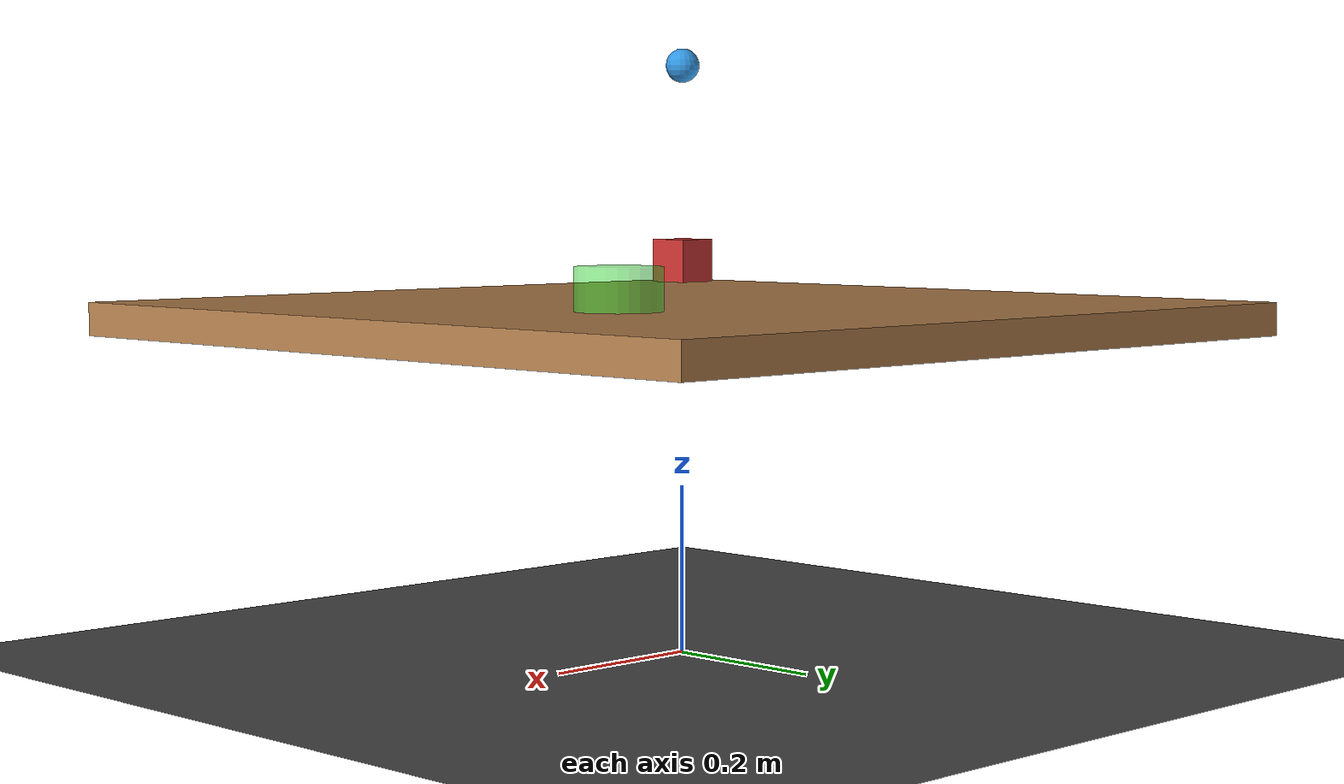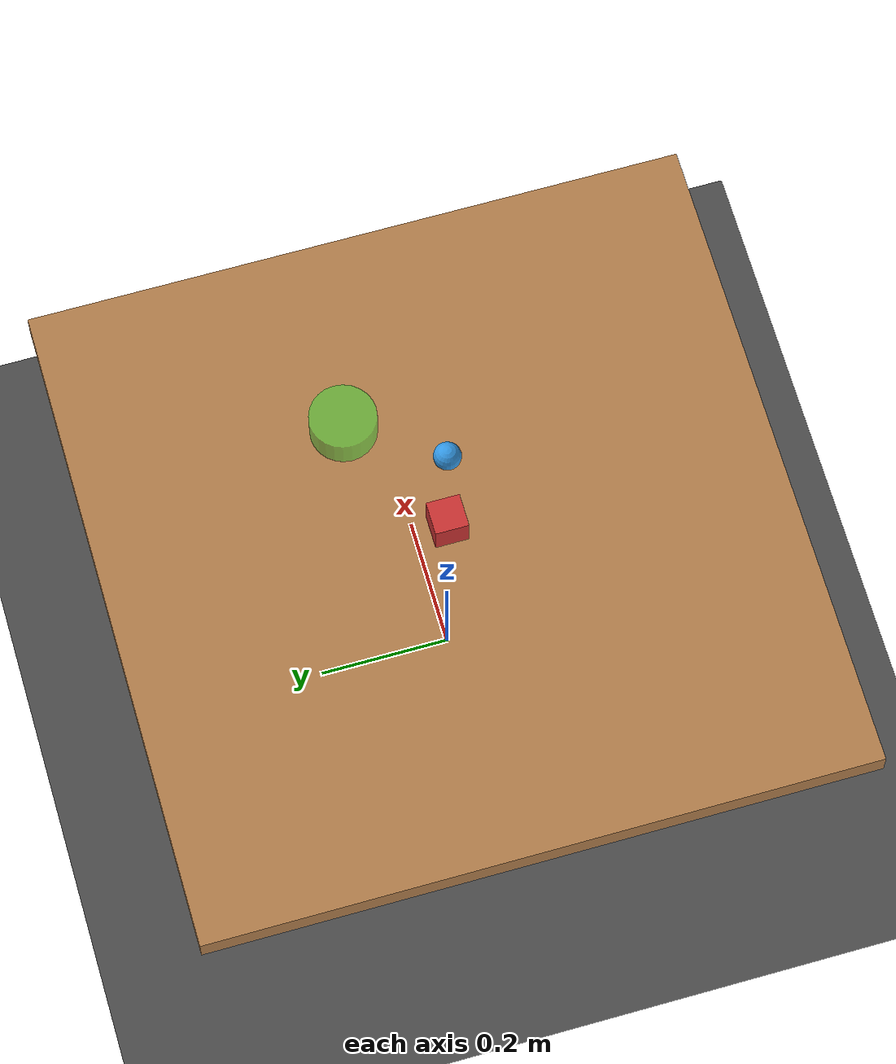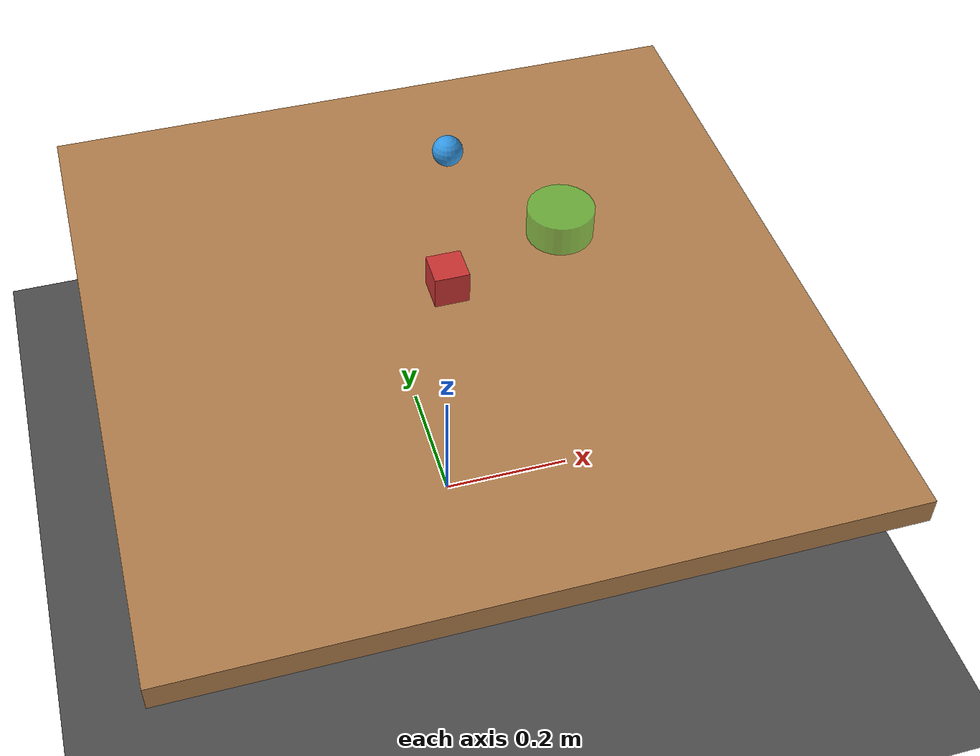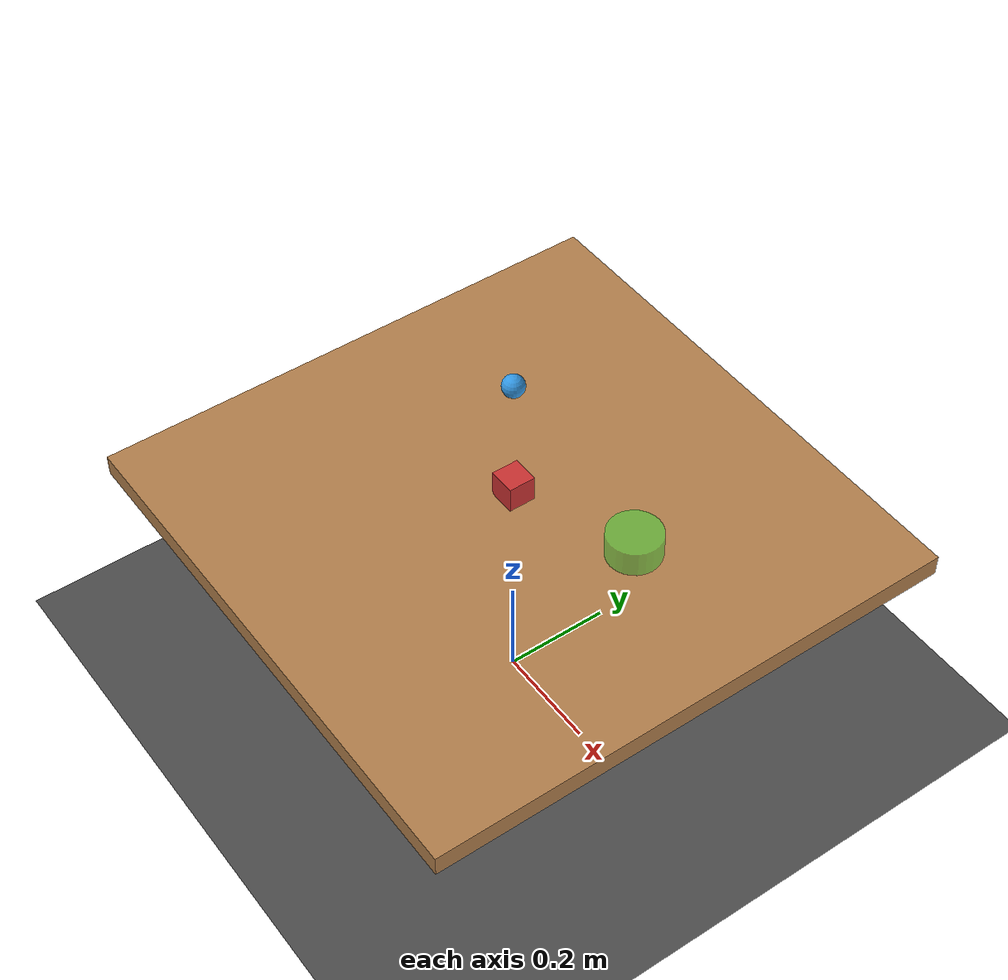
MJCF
<mujoco model="gauntlet_tabletop">
  <option integrator="implicitfast" timestep="0.01" gravity="0 0 -9.81"/>

  <visual>
    <headlight diffuse="0.6 0.6 0.6" ambient="0.3 0.3 0.3" specular="0 0 0"/>
    <rgba haze="0.15 0.25 0.35 1"/>
  </visual>

  <asset>
    <texture type="skybox" builtin="gradient" rgb1="0.3 0.5 0.7" rgb2="0 0 0"
             width="512" height="512"/>
    <material name="table_mat"    rgba="0.7 0.5 0.3 1"/>
    <material name="cube_mat"     rgba="0.8 0.2 0.2 1"/>
    <material name="cube_alt_mat" rgba="0.2 0.6 0.2 1"/>
    <material name="ee_mat"       rgba="0.2 0.6 0.9 1"/>
    <material name="target_mat"   rgba="0.2 0.9 0.2 0.5"/>
    <material name="distractor_mat" rgba="0.4 0.4 0.8 1"/>
  </asset>

  <worldbody>
    <light pos="0 0 2" dir="0 0 -1" diffuse="1 1 1"/>

    <camera name="main" pos="0.6 -0.6 0.8" xyaxes="1 1 0 0 0 1"/>

    <geom name="floor" type="plane" size="2 2 0.1" rgba="0.3 0.3 0.3 1"/>

    <body name="table" pos="0 0 0.4">
      <geom name="table_top" type="box" size="0.5 0.5 0.02" material="table_mat"/>
    </body>

    <body name="cube" pos="0 0 0.47">
      <freejoint/>
      <geom name="cube_geom" type="box" size="0.025 0.025 0.025"
            material="cube_mat" mass="0.1"/>
      <geom name="swap_mug_geom" type="cylinder" size="0.025 0.025"
            rgba="0.95 0.92 0.85 0" mass="0.1"
            contype="0" conaffinity="0"/>
      <geom name="swap_banana_geom" type="capsule" size="0.018 0.04"
            rgba="0.95 0.85 0.15 0" mass="0.1"
            contype="0" conaffinity="0"/>
      <geom name="swap_screwdriver_geom" type="cylinder" size="0.012 0.05"
            rgba="0.55 0.55 0.6 0" mass="0.1"
            contype="0" conaffinity="0"/>
      <geom name="swap_bottle_geom" type="ellipsoid" size="0.022 0.022 0.045"
            rgba="0.15 0.25 0.65 0" mass="0.1"
            contype="0" conaffinity="0"/>
    </body>

    <body name="ee" mocap="true" pos="0 0 0.7">
      <geom name="ee_geom" type="sphere" size="0.02" material="ee_mat"
            contype="0" conaffinity="0"/>
    </body>

    <site name="target" pos="0.2 0.1 0.42" size="0.05 0.05 0.001"
          type="cylinder" material="target_mat"/>

    <body name="distractor_0" pos="0.35 0.0 0.435">
      <geom name="distractor_0_geom" type="box" size="0.015 0.015 0.015"
            material="distractor_mat" rgba="0.4 0.4 0.8 0"
            contype="0" conaffinity="0"/>
    </body>
    <body name="distractor_1" pos="-0.35 0.0 0.435">
      <geom name="distractor_1_geom" type="box" size="0.015 0.015 0.015"
            material="distractor_mat" rgba="0.4 0.4 0.8 0"
            contype="0" conaffinity="0"/>
    </body>
    <body name="distractor_2" pos="0.0 0.35 0.435">
      <geom name="distractor_2_geom" type="box" size="0.015 0.015 0.015"
            material="distractor_mat" rgba="0.4 0.4 0.8 0"
            contype="0" conaffinity="0"/>
    </body>
    <body name="distractor_3" pos="0.0 -0.35 0.435">
      <geom name="distractor_3_geom" type="box" size="0.015 0.015 0.015"
            material="distractor_mat" rgba="0.4 0.4 0.8 0"
            contype="0" conaffinity="0"/>
    </body>
    <body name="distractor_4" pos="0.3 0.3 0.435">
      <geom name="distractor_4_geom" type="box" size="0.015 0.015 0.015"
            material="distractor_mat" rgba="0.4 0.4 0.8 0"
            contype="0" conaffinity="0"/>
    </body>
    <body name="distractor_5" pos="-0.3 0.3 0.435">
      <geom name="distractor_5_geom" type="box" size="0.015 0.015 0.015"
            material="distractor_mat" rgba="0.4 0.4 0.8 0"
            contype="0" conaffinity="0"/>
    </body>
    <body name="distractor_6" pos="0.3 -0.3 0.435">
      <geom name="distractor_6_geom" type="box" size="0.015 0.015 0.015"
            material="distractor_mat" rgba="0.4 0.4 0.8 0"
            contype="0" conaffinity="0"/>
    </body>
    <body name="distractor_7" pos="-0.3 -0.3 0.435">
      <geom name="distractor_7_geom" type="box" size="0.015 0.015 0.015"
            material="distractor_mat" rgba="0.4 0.4 0.8 0"
            contype="0" conaffinity="0"/>
    </body>
    <body name="distractor_8" pos="0.42 0.15 0.435">
      <geom name="distractor_8_geom" type="box" size="0.015 0.015 0.015"
            material="distractor_mat" rgba="0.4 0.4 0.8 0"
            contype="0" conaffinity="0"/>
    </body>
    <body name="distractor_9" pos="-0.42 -0.15 0.435">
      <geom name="distractor_9_geom" type="box" size="0.015 0.015 0.015"
            material="distractor_mat" rgba="0.4 0.4 0.8 0"
            contype="0" conaffinity="0"/>
    </body>
  </worldbody>
</mujoco>
